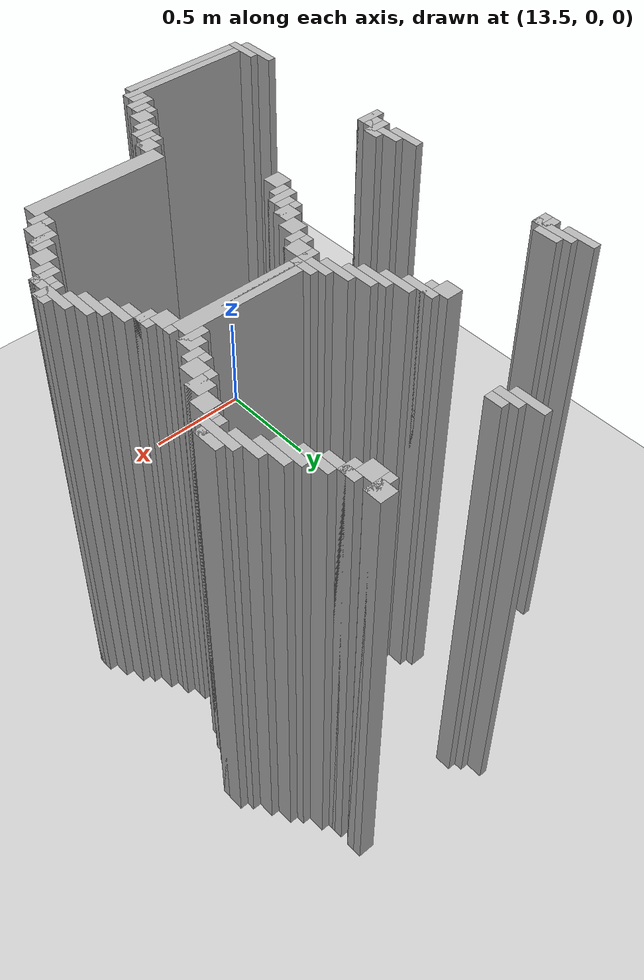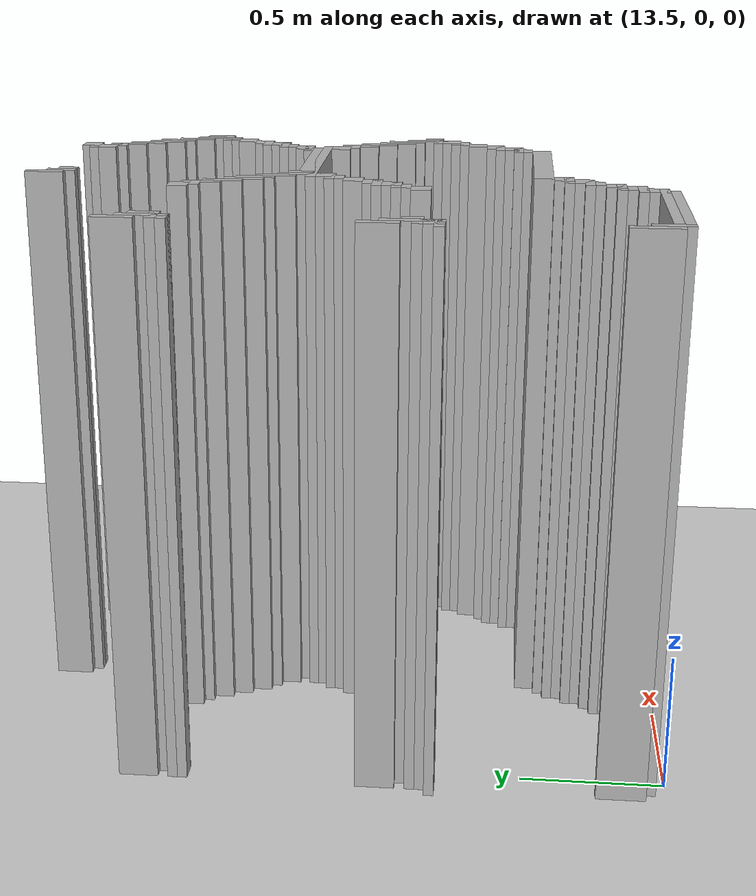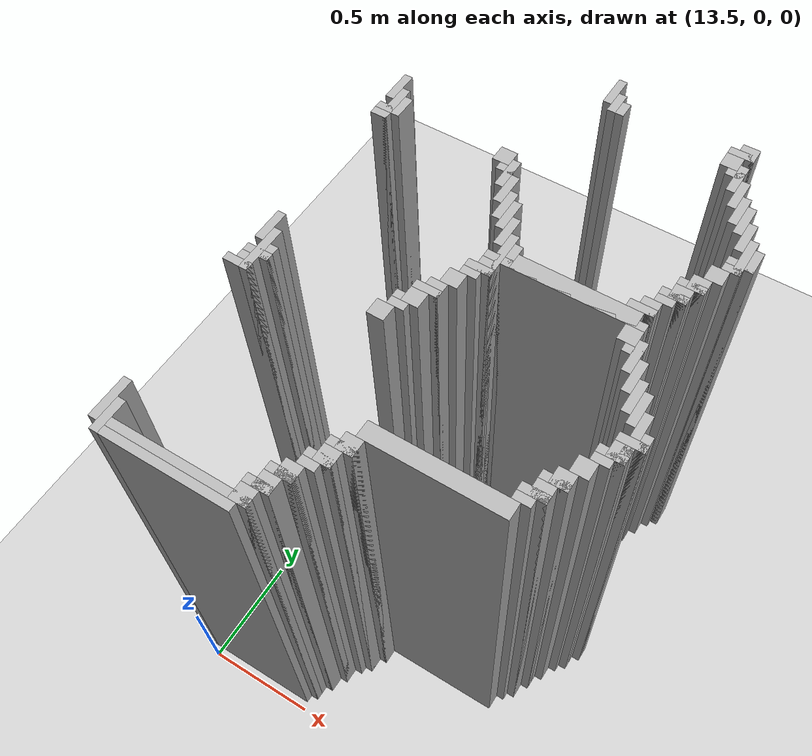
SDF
<sdf version="1.6">
 <world name="slam_world">
  <model name="ground_plane">
   <static>true</static>
   <link name="link">
    <collision name="collision">
     <geometry><plane><normal>0 0 1</normal><size>100 100</size></plane></geometry>
    </collision>
    <visual name="visual">
     <geometry><plane><normal>0 0 1</normal><size>100 100</size></plane></geometry>
     <material>
      <ambient>0.8 0.8 0.8 1</ambient>
      <diffuse>0.8 0.8 0.8 1</diffuse>
      <specular>0.8 0.8 0.8 1</specular>
     </material>
    </visual>
   </link>
  </model>
  <model name="wall_5011">
   <static>true</static>
   <pose>14.147331786542923 2.262180974477958 1.0 0 0 0</pose>
   <link name="link">
    <collision name="collision">
     <geometry><box><size>0.03480278422273782 0.13921113689095127 2.0</size></box></geometry>
    </collision>
    <visual name="visual">
     <geometry><box><size>0.03480278422273782 0.13921113689095127 2.0</size></box></geometry>
     <material><ambient>0.5 0.5 0.5 1</ambient><diffuse>0.7 0.7 0.7 1</diffuse></material>
    </visual>
   </link>
  </model>
  <model name="wall_5028">
   <static>true</static>
   <pose>14.18213457076566 2.2099767981438516 1.0 0 0 0</pose>
   <link name="link">
    <collision name="collision">
     <geometry><box><size>0.03480278422273782 0.10440835266821345 2.0</size></box></geometry>
    </collision>
    <visual name="visual">
     <geometry><box><size>0.03480278422273782 0.10440835266821345 2.0</size></box></geometry>
     <material><ambient>0.5 0.5 0.5 1</ambient><diffuse>0.7 0.7 0.7 1</diffuse></material>
    </visual>
   </link>
  </model>
  <model name="wall_5029">
   <static>true</static>
   <pose>14.721577726218097 2.2273781902552203 1.0 0 0 0</pose>
   <link name="link">
    <collision name="collision">
     <geometry><box><size>0.06960556844547564 0.06960556844547564 2.0</size></box></geometry>
    </collision>
    <visual name="visual">
     <geometry><box><size>0.06960556844547564 0.06960556844547564 2.0</size></box></geometry>
     <material><ambient>0.5 0.5 0.5 1</ambient><diffuse>0.7 0.7 0.7 1</diffuse></material>
    </visual>
   </link>
  </model>
  <model name="wall_5043">
   <static>true</static>
   <pose>14.2169373549884 2.1925754060324825 1.0 0 0 0</pose>
   <link name="link">
    <collision name="collision">
     <geometry><box><size>0.03480278422273782 0.06960556844547564 2.0</size></box></geometry>
    </collision>
    <visual name="visual">
     <geometry><box><size>0.03480278422273782 0.06960556844547564 2.0</size></box></geometry>
     <material><ambient>0.5 0.5 0.5 1</ambient><diffuse>0.7 0.7 0.7 1</diffuse></material>
    </visual>
   </link>
  </model>
  <model name="wall_5044">
   <static>true</static>
   <pose>14.704176334106728 2.2099767981438516 1.0 0 0 0</pose>
   <link name="link">
    <collision name="collision">
     <geometry><box><size>0.10440835266821345 0.03480278422273782 2.0</size></box></geometry>
    </collision>
    <visual name="visual">
     <geometry><box><size>0.10440835266821345 0.03480278422273782 2.0</size></box></geometry>
     <material><ambient>0.5 0.5 0.5 1</ambient><diffuse>0.7 0.7 0.7 1</diffuse></material>
    </visual>
   </link>
  </model>
  <model name="wall_5055">
   <static>true</static>
   <pose>14.68677494199536 2.1577726218097446 1.0 0 0 0</pose>
   <link name="link">
    <collision name="collision">
     <geometry><box><size>0.06960556844547564 0.06960556844547564 2.0</size></box></geometry>
    </collision>
    <visual name="visual">
     <geometry><box><size>0.06960556844547564 0.06960556844547564 2.0</size></box></geometry>
     <material><ambient>0.5 0.5 0.5 1</ambient><diffuse>0.7 0.7 0.7 1</diffuse></material>
    </visual>
   </link>
  </model>
  <model name="wall_5072">
   <static>true</static>
   <pose>14.738979118329466 2.088167053364269 1.0 0 0 0</pose>
   <link name="link">
    <collision name="collision">
     <geometry><box><size>0.03480278422273782 0.13921113689095127 2.0</size></box></geometry>
    </collision>
    <visual name="visual">
     <geometry><box><size>0.03480278422273782 0.13921113689095127 2.0</size></box></geometry>
     <material><ambient>0.5 0.5 0.5 1</ambient><diffuse>0.7 0.7 0.7 1</diffuse></material>
    </visual>
   </link>
  </model>
  <model name="wall_5086">
   <static>true</static>
   <pose>14.721577726218097 2.105568445475638 1.0 0 0 0</pose>
   <link name="link">
    <collision name="collision">
     <geometry><box><size>0.06960556844547564 0.03480278422273782 2.0</size></box></geometry>
    </collision>
    <visual name="visual">
     <geometry><box><size>0.06960556844547564 0.03480278422273782 2.0</size></box></geometry>
     <material><ambient>0.5 0.5 0.5 1</ambient><diffuse>0.7 0.7 0.7 1</diffuse></material>
    </visual>
   </link>
  </model>
  <model name="wall_5100">
   <static>true</static>
   <pose>14.773781902552203 2.0185614849187936 1.0 0 0 0</pose>
   <link name="link">
    <collision name="collision">
     <geometry><box><size>0.03480278422273782 0.13921113689095127 2.0</size></box></geometry>
    </collision>
    <visual name="visual">
     <geometry><box><size>0.03480278422273782 0.13921113689095127 2.0</size></box></geometry>
     <material><ambient>0.5 0.5 0.5 1</ambient><diffuse>0.7 0.7 0.7 1</diffuse></material>
    </visual>
   </link>
  </model>
  <model name="wall_5114">
   <static>true</static>
   <pose>14.80858468677494 1.948955916473318 1.0 0 0 0</pose>
   <link name="link">
    <collision name="collision">
     <geometry><box><size>0.03480278422273782 0.13921113689095127 2.0</size></box></geometry>
    </collision>
    <visual name="visual">
     <geometry><box><size>0.03480278422273782 0.13921113689095127 2.0</size></box></geometry>
     <material><ambient>0.5 0.5 0.5 1</ambient><diffuse>0.7 0.7 0.7 1</diffuse></material>
    </visual>
   </link>
  </model>
  <model name="wall_5128">
   <static>true</static>
   <pose>14.84338747099768 1.91415313225058 1.0 0 0 0</pose>
   <link name="link">
    <collision name="collision">
     <geometry><box><size>0.03480278422273782 0.13921113689095127 2.0</size></box></geometry>
    </collision>
    <visual name="visual">
     <geometry><box><size>0.03480278422273782 0.13921113689095127 2.0</size></box></geometry>
     <material><ambient>0.5 0.5 0.5 1</ambient><diffuse>0.7 0.7 0.7 1</diffuse></material>
    </visual>
   </link>
  </model>
  <model name="wall_5149">
   <static>true</static>
   <pose>13.416473317865428 1.8445475638051043 1.0 0 0 0</pose>
   <link name="link">
    <collision name="collision">
     <geometry><box><size>0.03480278422273782 0.13921113689095127 2.0</size></box></geometry>
    </collision>
    <visual name="visual">
     <geometry><box><size>0.03480278422273782 0.13921113689095127 2.0</size></box></geometry>
     <material><ambient>0.5 0.5 0.5 1</ambient><diffuse>0.7 0.7 0.7 1</diffuse></material>
    </visual>
   </link>
  </model>
  <model name="wall_5150">
   <static>true</static>
   <pose>14.878190255220417 1.8445475638051043 1.0 0 0 0</pose>
   <link name="link">
    <collision name="collision">
     <geometry><box><size>0.03480278422273782 0.13921113689095127 2.0</size></box></geometry>
    </collision>
    <visual name="visual">
     <geometry><box><size>0.03480278422273782 0.13921113689095127 2.0</size></box></geometry>
     <material><ambient>0.5 0.5 0.5 1</ambient><diffuse>0.7 0.7 0.7 1</diffuse></material>
    </visual>
   </link>
  </model>
  <model name="wall_5168">
   <static>true</static>
   <pose>13.451276102088167 1.75754060324826 1.0 0 0 0</pose>
   <link name="link">
    <collision name="collision">
     <geometry><box><size>0.03480278422273782 0.17401392111368907 2.0</size></box></geometry>
    </collision>
    <visual name="visual">
     <geometry><box><size>0.03480278422273782 0.17401392111368907 2.0</size></box></geometry>
     <material><ambient>0.5 0.5 0.5 1</ambient><diffuse>0.7 0.7 0.7 1</diffuse></material>
    </visual>
   </link>
  </model>
  <model name="wall_5169">
   <static>true</static>
   <pose>14.912993039443155 1.75754060324826 1.0 0 0 0</pose>
   <link name="link">
    <collision name="collision">
     <geometry><box><size>0.03480278422273782 0.17401392111368907 2.0</size></box></geometry>
    </collision>
    <visual name="visual">
     <geometry><box><size>0.03480278422273782 0.17401392111368907 2.0</size></box></geometry>
     <material><ambient>0.5 0.5 0.5 1</ambient><diffuse>0.7 0.7 0.7 1</diffuse></material>
    </visual>
   </link>
  </model>
  <model name="wall_5182">
   <static>true</static>
   <pose>13.486078886310905 1.75754060324826 1.0 0 0 0</pose>
   <link name="link">
    <collision name="collision">
     <geometry><box><size>0.03480278422273782 0.10440835266821345 2.0</size></box></geometry>
    </collision>
    <visual name="visual">
     <geometry><box><size>0.03480278422273782 0.10440835266821345 2.0</size></box></geometry>
     <material><ambient>0.5 0.5 0.5 1</ambient><diffuse>0.7 0.7 0.7 1</diffuse></material>
    </visual>
   </link>
  </model>
  <model name="wall_5183">
   <static>true</static>
   <pose>14.947795823665892 1.75754060324826 1.0 0 0 0</pose>
   <link name="link">
    <collision name="collision">
     <geometry><box><size>0.03480278422273782 0.10440835266821345 2.0</size></box></geometry>
    </collision>
    <visual name="visual">
     <geometry><box><size>0.03480278422273782 0.10440835266821345 2.0</size></box></geometry>
     <material><ambient>0.5 0.5 0.5 1</ambient><diffuse>0.7 0.7 0.7 1</diffuse></material>
    </visual>
   </link>
  </model>
  <model name="wall_5193">
   <static>true</static>
   <pose>13.955916473317865 1.740139211136891 1.0 0 0 0</pose>
   <link name="link">
    <collision name="collision">
     <geometry><box><size>0.06960556844547564 0.06960556844547564 2.0</size></box></geometry>
    </collision>
    <visual name="visual">
     <geometry><box><size>0.06960556844547564 0.06960556844547564 2.0</size></box></geometry>
     <material><ambient>0.5 0.5 0.5 1</ambient><diffuse>0.7 0.7 0.7 1</diffuse></material>
    </visual>
   </link>
  </model>
  <model name="wall_5203">
   <static>true</static>
   <pose>13.451276102088167 1.722737819025522 1.0 0 0 0</pose>
   <link name="link">
    <collision name="collision">
     <geometry><box><size>0.10440835266821345 0.03480278422273782 2.0</size></box></geometry>
    </collision>
    <visual name="visual">
     <geometry><box><size>0.10440835266821345 0.03480278422273782 2.0</size></box></geometry>
     <material><ambient>0.5 0.5 0.5 1</ambient><diffuse>0.7 0.7 0.7 1</diffuse></material>
    </visual>
   </link>
  </model>
  <model name="wall_5204">
   <static>true</static>
   <pose>14.008120649651971 1.6705336426914152 1.0 0 0 0</pose>
   <link name="link">
    <collision name="collision">
     <geometry><box><size>0.03480278422273782 0.13921113689095127 2.0</size></box></geometry>
    </collision>
    <visual name="visual">
     <geometry><box><size>0.03480278422273782 0.13921113689095127 2.0</size></box></geometry>
     <material><ambient>0.5 0.5 0.5 1</ambient><diffuse>0.7 0.7 0.7 1</diffuse></material>
    </visual>
   </link>
  </model>
  <model name="wall_5205">
   <static>true</static>
   <pose>14.912993039443155 1.722737819025522 1.0 0 0 0</pose>
   <link name="link">
    <collision name="collision">
     <geometry><box><size>0.10440835266821345 0.03480278422273782 2.0</size></box></geometry>
    </collision>
    <visual name="visual">
     <geometry><box><size>0.10440835266821345 0.03480278422273782 2.0</size></box></geometry>
     <material><ambient>0.5 0.5 0.5 1</ambient><diffuse>0.7 0.7 0.7 1</diffuse></material>
    </visual>
   </link>
  </model>
  <model name="wall_5218">
   <static>true</static>
   <pose>13.433874709976797 1.6879350348027842 1.0 0 0 0</pose>
   <link name="link">
    <collision name="collision">
     <geometry><box><size>0.06960556844547564 0.03480278422273782 2.0</size></box></geometry>
    </collision>
    <visual name="visual">
     <geometry><box><size>0.06960556844547564 0.03480278422273782 2.0</size></box></geometry>
     <material><ambient>0.5 0.5 0.5 1</ambient><diffuse>0.7 0.7 0.7 1</diffuse></material>
    </visual>
   </link>
  </model>
  <model name="wall_5219">
   <static>true</static>
   <pose>13.990719257540603 1.6879350348027842 1.0 0 0 0</pose>
   <link name="link">
    <collision name="collision">
     <geometry><box><size>0.06960556844547564 0.03480278422273782 2.0</size></box></geometry>
    </collision>
    <visual name="visual">
     <geometry><box><size>0.06960556844547564 0.03480278422273782 2.0</size></box></geometry>
     <material><ambient>0.5 0.5 0.5 1</ambient><diffuse>0.7 0.7 0.7 1</diffuse></material>
    </visual>
   </link>
  </model>
  <model name="wall_5220">
   <static>true</static>
   <pose>14.895591647331786 1.6879350348027842 1.0 0 0 0</pose>
   <link name="link">
    <collision name="collision">
     <geometry><box><size>0.06960556844547564 0.03480278422273782 2.0</size></box></geometry>
    </collision>
    <visual name="visual">
     <geometry><box><size>0.06960556844547564 0.03480278422273782 2.0</size></box></geometry>
     <material><ambient>0.5 0.5 0.5 1</ambient><diffuse>0.7 0.7 0.7 1</diffuse></material>
    </visual>
   </link>
  </model>
  <model name="wall_5234">
   <static>true</static>
   <pose>14.042923433874709 1.6009280742459395 1.0 0 0 0</pose>
   <link name="link">
    <collision name="collision">
     <geometry><box><size>0.03480278422273782 0.13921113689095127 2.0</size></box></geometry>
    </collision>
    <visual name="visual">
     <geometry><box><size>0.03480278422273782 0.13921113689095127 2.0</size></box></geometry>
     <material><ambient>0.5 0.5 0.5 1</ambient><diffuse>0.7 0.7 0.7 1</diffuse></material>
    </visual>
   </link>
  </model>
  <model name="wall_5235">
   <static>true</static>
   <pose>14.860788863109049 1.6357308584686774 1.0 0 0 0</pose>
   <link name="link">
    <collision name="collision">
     <geometry><box><size>0.06960556844547564 0.06960556844547564 2.0</size></box></geometry>
    </collision>
    <visual name="visual">
     <geometry><box><size>0.06960556844547564 0.06960556844547564 2.0</size></box></geometry>
     <material><ambient>0.5 0.5 0.5 1</ambient><diffuse>0.7 0.7 0.7 1</diffuse></material>
    </visual>
   </link>
  </model>
  <model name="wall_5249">
   <static>true</static>
   <pose>14.077726218097448 1.531322505800464 1.0 0 0 0</pose>
   <link name="link">
    <collision name="collision">
     <geometry><box><size>0.03480278422273782 0.13921113689095127 2.0</size></box></geometry>
    </collision>
    <visual name="visual">
     <geometry><box><size>0.03480278422273782 0.13921113689095127 2.0</size></box></geometry>
     <material><ambient>0.5 0.5 0.5 1</ambient><diffuse>0.7 0.7 0.7 1</diffuse></material>
    </visual>
   </link>
  </model>
  <model name="wall_5250">
   <static>true</static>
   <pose>14.825986078886311 1.5661252900232019 1.0 0 0 0</pose>
   <link name="link">
    <collision name="collision">
     <geometry><box><size>0.06960556844547564 0.06960556844547564 2.0</size></box></geometry>
    </collision>
    <visual name="visual">
     <geometry><box><size>0.06960556844547564 0.06960556844547564 2.0</size></box></geometry>
     <material><ambient>0.5 0.5 0.5 1</ambient><diffuse>0.7 0.7 0.7 1</diffuse></material>
    </visual>
   </link>
  </model>
  <model name="wall_5264">
   <static>true</static>
   <pose>14.112529002320185 1.4965197215777262 1.0 0 0 0</pose>
   <link name="link">
    <collision name="collision">
     <geometry><box><size>0.03480278422273782 0.13921113689095127 2.0</size></box></geometry>
    </collision>
    <visual name="visual">
     <geometry><box><size>0.03480278422273782 0.13921113689095127 2.0</size></box></geometry>
     <material><ambient>0.5 0.5 0.5 1</ambient><diffuse>0.7 0.7 0.7 1</diffuse></material>
    </visual>
   </link>
  </model>
  <model name="wall_5265">
   <static>true</static>
   <pose>14.80858468677494 1.548723897911833 1.0 0 0 0</pose>
   <link name="link">
    <collision name="collision">
     <geometry><box><size>0.10440835266821345 0.03480278422273782 2.0</size></box></geometry>
    </collision>
    <visual name="visual">
     <geometry><box><size>0.10440835266821345 0.03480278422273782 2.0</size></box></geometry>
     <material><ambient>0.5 0.5 0.5 1</ambient><diffuse>0.7 0.7 0.7 1</diffuse></material>
    </visual>
   </link>
  </model>
  <model name="wall_5276">
   <static>true</static>
   <pose>14.791183294663572 1.4965197215777262 1.0 0 0 0</pose>
   <link name="link">
    <collision name="collision">
     <geometry><box><size>0.06960556844547564 0.06960556844547564 2.0</size></box></geometry>
    </collision>
    <visual name="visual">
     <geometry><box><size>0.06960556844547564 0.06960556844547564 2.0</size></box></geometry>
     <material><ambient>0.5 0.5 0.5 1</ambient><diffuse>0.7 0.7 0.7 1</diffuse></material>
    </visual>
   </link>
  </model>
  <model name="wall_5290">
   <static>true</static>
   <pose>14.147331786542923 1.4269141531322505 1.0 0 0 0</pose>
   <link name="link">
    <collision name="collision">
     <geometry><box><size>0.03480278422273782 0.13921113689095127 2.0</size></box></geometry>
    </collision>
    <visual name="visual">
     <geometry><box><size>0.03480278422273782 0.13921113689095127 2.0</size></box></geometry>
     <material><ambient>0.5 0.5 0.5 1</ambient><diffuse>0.7 0.7 0.7 1</diffuse></material>
    </visual>
   </link>
  </model>
  <model name="wall_5291">
   <static>true</static>
   <pose>14.773781902552203 1.4791183294663572 1.0 0 0 0</pose>
   <link name="link">
    <collision name="collision">
     <geometry><box><size>0.10440835266821345 0.03480278422273782 2.0</size></box></geometry>
    </collision>
    <visual name="visual">
     <geometry><box><size>0.10440835266821345 0.03480278422273782 2.0</size></box></geometry>
     <material><ambient>0.5 0.5 0.5 1</ambient><diffuse>0.7 0.7 0.7 1</diffuse></material>
    </visual>
   </link>
  </model>
  <model name="wall_5298">
   <static>true</static>
   <pose>14.756380510440835 1.4443155452436194 1.0 0 0 0</pose>
   <link name="link">
    <collision name="collision">
     <geometry><box><size>0.06960556844547564 0.03480278422273782 2.0</size></box></geometry>
    </collision>
    <visual name="visual">
     <geometry><box><size>0.06960556844547564 0.03480278422273782 2.0</size></box></geometry>
     <material><ambient>0.5 0.5 0.5 1</ambient><diffuse>0.7 0.7 0.7 1</diffuse></material>
    </visual>
   </link>
  </model>
  <model name="wall_5312">
   <static>true</static>
   <pose>14.18213457076566 1.322505800464037 1.0 0 0 0</pose>
   <link name="link">
    <collision name="collision">
     <geometry><box><size>0.03480278422273782 0.2088167053364269 2.0</size></box></geometry>
    </collision>
    <visual name="visual">
     <geometry><box><size>0.03480278422273782 0.2088167053364269 2.0</size></box></geometry>
     <material><ambient>0.5 0.5 0.5 1</ambient><diffuse>0.7 0.7 0.7 1</diffuse></material>
    </visual>
   </link>
  </model>
  <model name="wall_5313">
   <static>true</static>
   <pose>14.721577726218097 1.3921113689095126 1.0 0 0 0</pose>
   <link name="link">
    <collision name="collision">
     <geometry><box><size>0.06960556844547564 0.06960556844547564 2.0</size></box></geometry>
    </collision>
    <visual name="visual">
     <geometry><box><size>0.06960556844547564 0.06960556844547564 2.0</size></box></geometry>
     <material><ambient>0.5 0.5 0.5 1</ambient><diffuse>0.7 0.7 0.7 1</diffuse></material>
    </visual>
   </link>
  </model>
  <model name="wall_5322">
   <static>true</static>
   <pose>14.2169373549884 1.339907192575406 1.0 0 0 0</pose>
   <link name="link">
    <collision name="collision">
     <geometry><box><size>0.03480278422273782 0.10440835266821345 2.0</size></box></geometry>
    </collision>
    <visual name="visual">
     <geometry><box><size>0.03480278422273782 0.10440835266821345 2.0</size></box></geometry>
     <material><ambient>0.5 0.5 0.5 1</ambient><diffuse>0.7 0.7 0.7 1</diffuse></material>
    </visual>
   </link>
  </model>
  <model name="wall_5323">
   <static>true</static>
   <pose>14.704176334106728 1.3747099767981439 1.0 0 0 0</pose>
   <link name="link">
    <collision name="collision">
     <geometry><box><size>0.10440835266821345 0.03480278422273782 2.0</size></box></geometry>
    </collision>
    <visual name="visual">
     <geometry><box><size>0.10440835266821345 0.03480278422273782 2.0</size></box></geometry>
     <material><ambient>0.5 0.5 0.5 1</ambient><diffuse>0.7 0.7 0.7 1</diffuse></material>
    </visual>
   </link>
  </model>
  <model name="wall_5336">
   <static>true</static>
   <pose>14.477958236658932 1.322505800464037 1.0 0 0 0</pose>
   <link name="link">
    <collision name="collision">
     <geometry><box><size>0.4872389791183295 0.06960556844547564 2.0</size></box></geometry>
    </collision>
    <visual name="visual">
     <geometry><box><size>0.4872389791183295 0.06960556844547564 2.0</size></box></geometry>
     <material><ambient>0.5 0.5 0.5 1</ambient><diffuse>0.7 0.7 0.7 1</diffuse></material>
    </visual>
   </link>
  </model>
  <model name="wall_5344">
   <static>true</static>
   <pose>14.443155452436194 1.3051044083526682 1.0 0 0 0</pose>
   <link name="link">
    <collision name="collision">
     <geometry><box><size>0.6264501160092807 0.03480278422273782 2.0</size></box></geometry>
    </collision>
    <visual name="visual">
     <geometry><box><size>0.6264501160092807 0.03480278422273782 2.0</size></box></geometry>
     <material><ambient>0.5 0.5 0.5 1</ambient><diffuse>0.7 0.7 0.7 1</diffuse></material>
    </visual>
   </link>
  </model>
  <model name="wall_5354">
   <static>true</static>
   <pose>14.164733178654291 1.2529002320185614 1.0 0 0 0</pose>
   <link name="link">
    <collision name="collision">
     <geometry><box><size>0.06960556844547564 0.06960556844547564 2.0</size></box></geometry>
    </collision>
    <visual name="visual">
     <geometry><box><size>0.06960556844547564 0.06960556844547564 2.0</size></box></geometry>
     <material><ambient>0.5 0.5 0.5 1</ambient><diffuse>0.7 0.7 0.7 1</diffuse></material>
    </visual>
   </link>
  </model>
  <model name="wall_5355">
   <static>true</static>
   <pose>14.721577726218097 1.2529002320185614 1.0 0 0 0</pose>
   <link name="link">
    <collision name="collision">
     <geometry><box><size>0.06960556844547564 0.06960556844547564 2.0</size></box></geometry>
    </collision>
    <visual name="visual">
     <geometry><box><size>0.06960556844547564 0.06960556844547564 2.0</size></box></geometry>
     <material><ambient>0.5 0.5 0.5 1</ambient><diffuse>0.7 0.7 0.7 1</diffuse></material>
    </visual>
   </link>
  </model>
  <model name="wall_5365">
   <static>true</static>
   <pose>14.147331786542923 1.2354988399071924 1.0 0 0 0</pose>
   <link name="link">
    <collision name="collision">
     <geometry><box><size>0.10440835266821345 0.03480278422273782 2.0</size></box></geometry>
    </collision>
    <visual name="visual">
     <geometry><box><size>0.10440835266821345 0.03480278422273782 2.0</size></box></geometry>
     <material><ambient>0.5 0.5 0.5 1</ambient><diffuse>0.7 0.7 0.7 1</diffuse></material>
    </visual>
   </link>
  </model>
  <model name="wall_5366">
   <static>true</static>
   <pose>14.773781902552203 1.1832946635730859 1.0 0 0 0</pose>
   <link name="link">
    <collision name="collision">
     <geometry><box><size>0.03480278422273782 0.13921113689095127 2.0</size></box></geometry>
    </collision>
    <visual name="visual">
     <geometry><box><size>0.03480278422273782 0.13921113689095127 2.0</size></box></geometry>
     <material><ambient>0.5 0.5 0.5 1</ambient><diffuse>0.7 0.7 0.7 1</diffuse></material>
    </visual>
   </link>
  </model>
  <model name="wall_5373">
   <static>true</static>
   <pose>14.129930394431554 1.2006960556844548 1.0 0 0 0</pose>
   <link name="link">
    <collision name="collision">
     <geometry><box><size>0.06960556844547564 0.03480278422273782 2.0</size></box></geometry>
    </collision>
    <visual name="visual">
     <geometry><box><size>0.06960556844547564 0.03480278422273782 2.0</size></box></geometry>
     <material><ambient>0.5 0.5 0.5 1</ambient><diffuse>0.7 0.7 0.7 1</diffuse></material>
    </visual>
   </link>
  </model>
  <model name="wall_5374">
   <static>true</static>
   <pose>14.756380510440835 1.2006960556844548 1.0 0 0 0</pose>
   <link name="link">
    <collision name="collision">
     <geometry><box><size>0.06960556844547564 0.03480278422273782 2.0</size></box></geometry>
    </collision>
    <visual name="visual">
     <geometry><box><size>0.06960556844547564 0.03480278422273782 2.0</size></box></geometry>
     <material><ambient>0.5 0.5 0.5 1</ambient><diffuse>0.7 0.7 0.7 1</diffuse></material>
    </visual>
   </link>
  </model>
  <model name="wall_5384">
   <static>true</static>
   <pose>14.095127610208817 1.148491879350348 1.0 0 0 0</pose>
   <link name="link">
    <collision name="collision">
     <geometry><box><size>0.06960556844547564 0.06960556844547564 2.0</size></box></geometry>
    </collision>
    <visual name="visual">
     <geometry><box><size>0.06960556844547564 0.06960556844547564 2.0</size></box></geometry>
     <material><ambient>0.5 0.5 0.5 1</ambient><diffuse>0.7 0.7 0.7 1</diffuse></material>
    </visual>
   </link>
  </model>
  <model name="wall_5385">
   <static>true</static>
   <pose>14.80858468677494 1.1136890951276102 1.0 0 0 0</pose>
   <link name="link">
    <collision name="collision">
     <geometry><box><size>0.03480278422273782 0.13921113689095127 2.0</size></box></geometry>
    </collision>
    <visual name="visual">
     <geometry><box><size>0.03480278422273782 0.13921113689095127 2.0</size></box></geometry>
     <material><ambient>0.5 0.5 0.5 1</ambient><diffuse>0.7 0.7 0.7 1</diffuse></material>
    </visual>
   </link>
  </model>
  <model name="wall_5395">
   <static>true</static>
   <pose>14.06032482598608 1.0788863109048723 1.0 0 0 0</pose>
   <link name="link">
    <collision name="collision">
     <geometry><box><size>0.06960556844547564 0.06960556844547564 2.0</size></box></geometry>
    </collision>
    <visual name="visual">
     <geometry><box><size>0.06960556844547564 0.06960556844547564 2.0</size></box></geometry>
     <material><ambient>0.5 0.5 0.5 1</ambient><diffuse>0.7 0.7 0.7 1</diffuse></material>
    </visual>
   </link>
  </model>
  <model name="wall_5396">
   <static>true</static>
   <pose>14.84338747099768 1.0440835266821344 1.0 0 0 0</pose>
   <link name="link">
    <collision name="collision">
     <geometry><box><size>0.03480278422273782 0.13921113689095127 2.0</size></box></geometry>
    </collision>
    <visual name="visual">
     <geometry><box><size>0.03480278422273782 0.13921113689095127 2.0</size></box></geometry>
     <material><ambient>0.5 0.5 0.5 1</ambient><diffuse>0.7 0.7 0.7 1</diffuse></material>
    </visual>
   </link>
  </model>
  <model name="wall_5405">
   <static>true</static>
   <pose>13.416473317865428 1.0092807424593968 1.0 0 0 0</pose>
   <link name="link">
    <collision name="collision">
     <geometry><box><size>0.03480278422273782 0.13921113689095127 2.0</size></box></geometry>
    </collision>
    <visual name="visual">
     <geometry><box><size>0.03480278422273782 0.13921113689095127 2.0</size></box></geometry>
     <material><ambient>0.5 0.5 0.5 1</ambient><diffuse>0.7 0.7 0.7 1</diffuse></material>
    </visual>
   </link>
  </model>
  <model name="wall_5406">
   <static>true</static>
   <pose>14.042923433874709 1.0614849187935034 1.0 0 0 0</pose>
   <link name="link">
    <collision name="collision">
     <geometry><box><size>0.10440835266821345 0.03480278422273782 2.0</size></box></geometry>
    </collision>
    <visual name="visual">
     <geometry><box><size>0.10440835266821345 0.03480278422273782 2.0</size></box></geometry>
     <material><ambient>0.5 0.5 0.5 1</ambient><diffuse>0.7 0.7 0.7 1</diffuse></material>
    </visual>
   </link>
  </model>
  <model name="wall_5407">
   <static>true</static>
   <pose>14.878190255220417 1.0092807424593968 1.0 0 0 0</pose>
   <link name="link">
    <collision name="collision">
     <geometry><box><size>0.03480278422273782 0.13921113689095127 2.0</size></box></geometry>
    </collision>
    <visual name="visual">
     <geometry><box><size>0.03480278422273782 0.13921113689095127 2.0</size></box></geometry>
     <material><ambient>0.5 0.5 0.5 1</ambient><diffuse>0.7 0.7 0.7 1</diffuse></material>
    </visual>
   </link>
  </model>
  <model name="wall_5412">
   <static>true</static>
   <pose>14.02552204176334 1.0092807424593968 1.0 0 0 0</pose>
   <link name="link">
    <collision name="collision">
     <geometry><box><size>0.06960556844547564 0.06960556844547564 2.0</size></box></geometry>
    </collision>
    <visual name="visual">
     <geometry><box><size>0.06960556844547564 0.06960556844547564 2.0</size></box></geometry>
     <material><ambient>0.5 0.5 0.5 1</ambient><diffuse>0.7 0.7 0.7 1</diffuse></material>
    </visual>
   </link>
  </model>
  <model name="wall_5421">
   <static>true</static>
   <pose>13.451276102088167 0.9048723897911832 1.0 0 0 0</pose>
   <link name="link">
    <collision name="collision">
     <geometry><box><size>0.03480278422273782 0.2088167053364269 2.0</size></box></geometry>
    </collision>
    <visual name="visual">
     <geometry><box><size>0.03480278422273782 0.2088167053364269 2.0</size></box></geometry>
     <material><ambient>0.5 0.5 0.5 1</ambient><diffuse>0.7 0.7 0.7 1</diffuse></material>
    </visual>
   </link>
  </model>
  <model name="wall_5422">
   <static>true</static>
   <pose>14.008120649651971 0.9918793503480278 1.0 0 0 0</pose>
   <link name="link">
    <collision name="collision">
     <geometry><box><size>0.10440835266821345 0.03480278422273782 2.0</size></box></geometry>
    </collision>
    <visual name="visual">
     <geometry><box><size>0.10440835266821345 0.03480278422273782 2.0</size></box></geometry>
     <material><ambient>0.5 0.5 0.5 1</ambient><diffuse>0.7 0.7 0.7 1</diffuse></material>
    </visual>
   </link>
  </model>
  <model name="wall_5423">
   <static>true</static>
   <pose>14.912993039443155 0.9048723897911832 1.0 0 0 0</pose>
   <link name="link">
    <collision name="collision">
     <geometry><box><size>0.03480278422273782 0.2088167053364269 2.0</size></box></geometry>
    </collision>
    <visual name="visual">
     <geometry><box><size>0.03480278422273782 0.2088167053364269 2.0</size></box></geometry>
     <material><ambient>0.5 0.5 0.5 1</ambient><diffuse>0.7 0.7 0.7 1</diffuse></material>
    </visual>
   </link>
  </model>
  <model name="wall_5428">
   <static>true</static>
   <pose>13.990719257540603 0.95707656612529 1.0 0 0 0</pose>
   <link name="link">
    <collision name="collision">
     <geometry><box><size>0.06960556844547564 0.03480278422273782 2.0</size></box></geometry>
    </collision>
    <visual name="visual">
     <geometry><box><size>0.06960556844547564 0.03480278422273782 2.0</size></box></geometry>
     <material><ambient>0.5 0.5 0.5 1</ambient><diffuse>0.7 0.7 0.7 1</diffuse></material>
    </visual>
   </link>
  </model>
  <model name="wall_5441">
   <static>true</static>
   <pose>13.486078886310905 0.9048723897911832 1.0 0 0 0</pose>
   <link name="link">
    <collision name="collision">
     <geometry><box><size>0.03480278422273782 0.06960556844547564 2.0</size></box></geometry>
    </collision>
    <visual name="visual">
     <geometry><box><size>0.03480278422273782 0.06960556844547564 2.0</size></box></geometry>
     <material><ambient>0.5 0.5 0.5 1</ambient><diffuse>0.7 0.7 0.7 1</diffuse></material>
    </visual>
   </link>
  </model>
  <model name="wall_5442">
   <static>true</static>
   <pose>13.955916473317865 0.9048723897911832 1.0 0 0 0</pose>
   <link name="link">
    <collision name="collision">
     <geometry><box><size>0.06960556844547564 0.06960556844547564 2.0</size></box></geometry>
    </collision>
    <visual name="visual">
     <geometry><box><size>0.06960556844547564 0.06960556844547564 2.0</size></box></geometry>
     <material><ambient>0.5 0.5 0.5 1</ambient><diffuse>0.7 0.7 0.7 1</diffuse></material>
    </visual>
   </link>
  </model>
  <model name="wall_5443">
   <static>true</static>
   <pose>14.947795823665892 0.9048723897911832 1.0 0 0 0</pose>
   <link name="link">
    <collision name="collision">
     <geometry><box><size>0.03480278422273782 0.06960556844547564 2.0</size></box></geometry>
    </collision>
    <visual name="visual">
     <geometry><box><size>0.03480278422273782 0.06960556844547564 2.0</size></box></geometry>
     <material><ambient>0.5 0.5 0.5 1</ambient><diffuse>0.7 0.7 0.7 1</diffuse></material>
    </visual>
   </link>
  </model>
  <model name="wall_5452">
   <static>true</static>
   <pose>13.451276102088167 0.8874709976798143 1.0 0 0 0</pose>
   <link name="link">
    <collision name="collision">
     <geometry><box><size>0.10440835266821345 0.03480278422273782 2.0</size></box></geometry>
    </collision>
    <visual name="visual">
     <geometry><box><size>0.10440835266821345 0.03480278422273782 2.0</size></box></geometry>
     <material><ambient>0.5 0.5 0.5 1</ambient><diffuse>0.7 0.7 0.7 1</diffuse></material>
    </visual>
   </link>
  </model>
  <model name="wall_5453">
   <static>true</static>
   <pose>14.912993039443155 0.8874709976798143 1.0 0 0 0</pose>
   <link name="link">
    <collision name="collision">
     <geometry><box><size>0.10440835266821345 0.03480278422273782 2.0</size></box></geometry>
    </collision>
    <visual name="visual">
     <geometry><box><size>0.10440835266821345 0.03480278422273782 2.0</size></box></geometry>
     <material><ambient>0.5 0.5 0.5 1</ambient><diffuse>0.7 0.7 0.7 1</diffuse></material>
    </visual>
   </link>
  </model>
  <model name="wall_5462">
   <static>true</static>
   <pose>13.433874709976797 0.8352668213457076 1.0 0 0 0</pose>
   <link name="link">
    <collision name="collision">
     <geometry><box><size>0.06960556844547564 0.06960556844547564 2.0</size></box></geometry>
    </collision>
    <visual name="visual">
     <geometry><box><size>0.06960556844547564 0.06960556844547564 2.0</size></box></geometry>
     <material><ambient>0.5 0.5 0.5 1</ambient><diffuse>0.7 0.7 0.7 1</diffuse></material>
    </visual>
   </link>
  </model>
  <model name="wall_5463">
   <static>true</static>
   <pose>14.895591647331786 0.8352668213457076 1.0 0 0 0</pose>
   <link name="link">
    <collision name="collision">
     <geometry><box><size>0.06960556844547564 0.06960556844547564 2.0</size></box></geometry>
    </collision>
    <visual name="visual">
     <geometry><box><size>0.06960556844547564 0.06960556844547564 2.0</size></box></geometry>
     <material><ambient>0.5 0.5 0.5 1</ambient><diffuse>0.7 0.7 0.7 1</diffuse></material>
    </visual>
   </link>
  </model>
  <model name="wall_5472">
   <static>true</static>
   <pose>13.416473317865428 0.8178654292343387 1.0 0 0 0</pose>
   <link name="link">
    <collision name="collision">
     <geometry><box><size>0.10440835266821345 0.03480278422273782 2.0</size></box></geometry>
    </collision>
    <visual name="visual">
     <geometry><box><size>0.10440835266821345 0.03480278422273782 2.0</size></box></geometry>
     <material><ambient>0.5 0.5 0.5 1</ambient><diffuse>0.7 0.7 0.7 1</diffuse></material>
    </visual>
   </link>
  </model>
  <model name="wall_5473">
   <static>true</static>
   <pose>14.878190255220417 0.8178654292343387 1.0 0 0 0</pose>
   <link name="link">
    <collision name="collision">
     <geometry><box><size>0.10440835266821345 0.03480278422273782 2.0</size></box></geometry>
    </collision>
    <visual name="visual">
     <geometry><box><size>0.10440835266821345 0.03480278422273782 2.0</size></box></geometry>
     <material><ambient>0.5 0.5 0.5 1</ambient><diffuse>0.7 0.7 0.7 1</diffuse></material>
    </visual>
   </link>
  </model>
  <model name="wall_5479">
   <static>true</static>
   <pose>14.860788863109049 0.7830626450116009 1.0 0 0 0</pose>
   <link name="link">
    <collision name="collision">
     <geometry><box><size>0.06960556844547564 0.03480278422273782 2.0</size></box></geometry>
    </collision>
    <visual name="visual">
     <geometry><box><size>0.06960556844547564 0.03480278422273782 2.0</size></box></geometry>
     <material><ambient>0.5 0.5 0.5 1</ambient><diffuse>0.7 0.7 0.7 1</diffuse></material>
    </visual>
   </link>
  </model>
  <model name="wall_5489">
   <static>true</static>
   <pose>14.825986078886311 0.7308584686774942 1.0 0 0 0</pose>
   <link name="link">
    <collision name="collision">
     <geometry><box><size>0.06960556844547564 0.06960556844547564 2.0</size></box></geometry>
    </collision>
    <visual name="visual">
     <geometry><box><size>0.06960556844547564 0.06960556844547564 2.0</size></box></geometry>
     <material><ambient>0.5 0.5 0.5 1</ambient><diffuse>0.7 0.7 0.7 1</diffuse></material>
    </visual>
   </link>
  </model>
  <model name="wall_5499">
   <static>true</static>
   <pose>14.791183294663572 0.6612529002320185 1.0 0 0 0</pose>
   <link name="link">
    <collision name="collision">
     <geometry><box><size>0.06960556844547564 0.06960556844547564 2.0</size></box></geometry>
    </collision>
    <visual name="visual">
     <geometry><box><size>0.06960556844547564 0.06960556844547564 2.0</size></box></geometry>
     <material><ambient>0.5 0.5 0.5 1</ambient><diffuse>0.7 0.7 0.7 1</diffuse></material>
    </visual>
   </link>
  </model>
  <model name="wall_5509">
   <static>true</static>
   <pose>14.773781902552203 0.6438515081206496 1.0 0 0 0</pose>
   <link name="link">
    <collision name="collision">
     <geometry><box><size>0.10440835266821345 0.03480278422273782 2.0</size></box></geometry>
    </collision>
    <visual name="visual">
     <geometry><box><size>0.10440835266821345 0.03480278422273782 2.0</size></box></geometry>
     <material><ambient>0.5 0.5 0.5 1</ambient><diffuse>0.7 0.7 0.7 1</diffuse></material>
    </visual>
   </link>
  </model>
  <model name="wall_5515">
   <static>true</static>
   <pose>14.756380510440835 0.5916473317865429 1.0 0 0 0</pose>
   <link name="link">
    <collision name="collision">
     <geometry><box><size>0.06960556844547564 0.06960556844547564 2.0</size></box></geometry>
    </collision>
    <visual name="visual">
     <geometry><box><size>0.06960556844547564 0.06960556844547564 2.0</size></box></geometry>
     <material><ambient>0.5 0.5 0.5 1</ambient><diffuse>0.7 0.7 0.7 1</diffuse></material>
    </visual>
   </link>
  </model>
  <model name="wall_5525">
   <static>true</static>
   <pose>14.738979118329466 0.574245939675174 1.0 0 0 0</pose>
   <link name="link">
    <collision name="collision">
     <geometry><box><size>0.10440835266821345 0.03480278422273782 2.0</size></box></geometry>
    </collision>
    <visual name="visual">
     <geometry><box><size>0.10440835266821345 0.03480278422273782 2.0</size></box></geometry>
     <material><ambient>0.5 0.5 0.5 1</ambient><diffuse>0.7 0.7 0.7 1</diffuse></material>
    </visual>
   </link>
  </model>
  <model name="wall_5531">
   <static>true</static>
   <pose>14.721577726218097 0.5394431554524362 1.0 0 0 0</pose>
   <link name="link">
    <collision name="collision">
     <geometry><box><size>0.06960556844547564 0.03480278422273782 2.0</size></box></geometry>
    </collision>
    <visual name="visual">
     <geometry><box><size>0.06960556844547564 0.03480278422273782 2.0</size></box></geometry>
     <material><ambient>0.5 0.5 0.5 1</ambient><diffuse>0.7 0.7 0.7 1</diffuse></material>
    </visual>
   </link>
  </model>
  <model name="wall_5542">
   <static>true</static>
   <pose>14.443155452436194 0.4872389791183295 1.0 0 0 0</pose>
   <link name="link">
    <collision name="collision">
     <geometry><box><size>0.5568445475638051 0.06960556844547564 2.0</size></box></geometry>
    </collision>
    <visual name="visual">
     <geometry><box><size>0.5568445475638051 0.06960556844547564 2.0</size></box></geometry>
     <material><ambient>0.5 0.5 0.5 1</ambient><diffuse>0.7 0.7 0.7 1</diffuse></material>
    </visual>
   </link>
  </model>
  <model name="wall_5562">
   <static>true</static>
   <pose>14.164733178654291 0.4176334106728538 1.0 0 0 0</pose>
   <link name="link">
    <collision name="collision">
     <geometry><box><size>0.06960556844547564 0.06960556844547564 2.0</size></box></geometry>
    </collision>
    <visual name="visual">
     <geometry><box><size>0.06960556844547564 0.06960556844547564 2.0</size></box></geometry>
     <material><ambient>0.5 0.5 0.5 1</ambient><diffuse>0.7 0.7 0.7 1</diffuse></material>
    </visual>
   </link>
  </model>
  <model name="wall_5582">
   <static>true</static>
   <pose>14.147331786542923 0.4002320185614849 1.0 0 0 0</pose>
   <link name="link">
    <collision name="collision">
     <geometry><box><size>0.10440835266821345 0.03480278422273782 2.0</size></box></geometry>
    </collision>
    <visual name="visual">
     <geometry><box><size>0.10440835266821345 0.03480278422273782 2.0</size></box></geometry>
     <material><ambient>0.5 0.5 0.5 1</ambient><diffuse>0.7 0.7 0.7 1</diffuse></material>
    </visual>
   </link>
  </model>
  <model name="wall_5602">
   <static>true</static>
   <pose>14.129930394431554 0.34802784222737815 1.0 0 0 0</pose>
   <link name="link">
    <collision name="collision">
     <geometry><box><size>0.06960556844547564 0.06960556844547564 2.0</size></box></geometry>
    </collision>
    <visual name="visual">
     <geometry><box><size>0.06960556844547564 0.06960556844547564 2.0</size></box></geometry>
     <material><ambient>0.5 0.5 0.5 1</ambient><diffuse>0.7 0.7 0.7 1</diffuse></material>
    </visual>
   </link>
  </model>
  <model name="wall_5622">
   <static>true</static>
   <pose>14.112529002320185 0.3306264501160093 1.0 0 0 0</pose>
   <link name="link">
    <collision name="collision">
     <geometry><box><size>0.10440835266821345 0.03480278422273782 2.0</size></box></geometry>
    </collision>
    <visual name="visual">
     <geometry><box><size>0.10440835266821345 0.03480278422273782 2.0</size></box></geometry>
     <material><ambient>0.5 0.5 0.5 1</ambient><diffuse>0.7 0.7 0.7 1</diffuse></material>
    </visual>
   </link>
  </model>
  <model name="wall_5632">
   <static>true</static>
   <pose>14.095127610208817 0.29582366589327147 1.0 0 0 0</pose>
   <link name="link">
    <collision name="collision">
     <geometry><box><size>0.06960556844547564 0.03480278422273782 2.0</size></box></geometry>
    </collision>
    <visual name="visual">
     <geometry><box><size>0.06960556844547564 0.03480278422273782 2.0</size></box></geometry>
     <material><ambient>0.5 0.5 0.5 1</ambient><diffuse>0.7 0.7 0.7 1</diffuse></material>
    </visual>
   </link>
  </model>
  <model name="wall_5652">
   <static>true</static>
   <pose>14.06032482598608 0.24361948955916474 1.0 0 0 0</pose>
   <link name="link">
    <collision name="collision">
     <geometry><box><size>0.06960556844547564 0.06960556844547564 2.0</size></box></geometry>
    </collision>
    <visual name="visual">
     <geometry><box><size>0.06960556844547564 0.06960556844547564 2.0</size></box></geometry>
     <material><ambient>0.5 0.5 0.5 1</ambient><diffuse>0.7 0.7 0.7 1</diffuse></material>
    </visual>
   </link>
  </model>
  <model name="wall_5671">
   <static>true</static>
   <pose>13.416473317865428 0.15661252900232017 1.0 0 0 0</pose>
   <link name="link">
    <collision name="collision">
     <geometry><box><size>0.03480278422273782 0.17401392111368907 2.0</size></box></geometry>
    </collision>
    <visual name="visual">
     <geometry><box><size>0.03480278422273782 0.17401392111368907 2.0</size></box></geometry>
     <material><ambient>0.5 0.5 0.5 1</ambient><diffuse>0.7 0.7 0.7 1</diffuse></material>
    </visual>
   </link>
  </model>
  <model name="wall_5672">
   <static>true</static>
   <pose>14.042923433874709 0.2262180974477958 1.0 0 0 0</pose>
   <link name="link">
    <collision name="collision">
     <geometry><box><size>0.10440835266821345 0.03480278422273782 2.0</size></box></geometry>
    </collision>
    <visual name="visual">
     <geometry><box><size>0.10440835266821345 0.03480278422273782 2.0</size></box></geometry>
     <material><ambient>0.5 0.5 0.5 1</ambient><diffuse>0.7 0.7 0.7 1</diffuse></material>
    </visual>
   </link>
  </model>
  <model name="wall_5682">
   <static>true</static>
   <pose>14.02552204176334 0.17401392111368907 1.0 0 0 0</pose>
   <link name="link">
    <collision name="collision">
     <geometry><box><size>0.06960556844547564 0.06960556844547564 2.0</size></box></geometry>
    </collision>
    <visual name="visual">
     <geometry><box><size>0.06960556844547564 0.06960556844547564 2.0</size></box></geometry>
     <material><ambient>0.5 0.5 0.5 1</ambient><diffuse>0.7 0.7 0.7 1</diffuse></material>
    </visual>
   </link>
  </model>
  <model name="wall_5701">
   <static>true</static>
   <pose>13.451276102088167 0.10440835266821345 1.0 0 0 0</pose>
   <link name="link">
    <collision name="collision">
     <geometry><box><size>0.03480278422273782 0.13921113689095127 2.0</size></box></geometry>
    </collision>
    <visual name="visual">
     <geometry><box><size>0.03480278422273782 0.13921113689095127 2.0</size></box></geometry>
     <material><ambient>0.5 0.5 0.5 1</ambient><diffuse>0.7 0.7 0.7 1</diffuse></material>
    </visual>
   </link>
  </model>
  <model name="wall_5702">
   <static>true</static>
   <pose>14.008120649651971 0.15661252900232017 1.0 0 0 0</pose>
   <link name="link">
    <collision name="collision">
     <geometry><box><size>0.10440835266821345 0.03480278422273782 2.0</size></box></geometry>
    </collision>
    <visual name="visual">
     <geometry><box><size>0.10440835266821345 0.03480278422273782 2.0</size></box></geometry>
     <material><ambient>0.5 0.5 0.5 1</ambient><diffuse>0.7 0.7 0.7 1</diffuse></material>
    </visual>
   </link>
  </model>
  <model name="wall_5712">
   <static>true</static>
   <pose>13.990719257540603 0.10440835266821345 1.0 0 0 0</pose>
   <link name="link">
    <collision name="collision">
     <geometry><box><size>0.06960556844547564 0.06960556844547564 2.0</size></box></geometry>
    </collision>
    <visual name="visual">
     <geometry><box><size>0.06960556844547564 0.06960556844547564 2.0</size></box></geometry>
     <material><ambient>0.5 0.5 0.5 1</ambient><diffuse>0.7 0.7 0.7 1</diffuse></material>
    </visual>
   </link>
  </model>
  <model name="wall_5723">
   <static>true</static>
   <pose>13.747099767981437 0.08700696055684454 1.0 0 0 0</pose>
   <link name="link">
    <collision name="collision">
     <geometry><box><size>0.5568445475638051 0.03480278422273782 2.0</size></box></geometry>
    </collision>
    <visual name="visual">
     <geometry><box><size>0.5568445475638051 0.03480278422273782 2.0</size></box></geometry>
     <material><ambient>0.5 0.5 0.5 1</ambient><diffuse>0.7 0.7 0.7 1</diffuse></material>
    </visual>
   </link>
  </model>
  <model name="wall_5733">
   <static>true</static>
   <pose>13.729698375870068 0.052204176334106726 1.0 0 0 0</pose>
   <link name="link">
    <collision name="collision">
     <geometry><box><size>0.5220417633410672 0.03480278422273782 2.0</size></box></geometry>
    </collision>
    <visual name="visual">
     <geometry><box><size>0.5220417633410672 0.03480278422273782 2.0</size></box></geometry>
     <material><ambient>0.5 0.5 0.5 1</ambient><diffuse>0.7 0.7 0.7 1</diffuse></material>
    </visual>
   </link>
  </model>
 </world>
</sdf>
